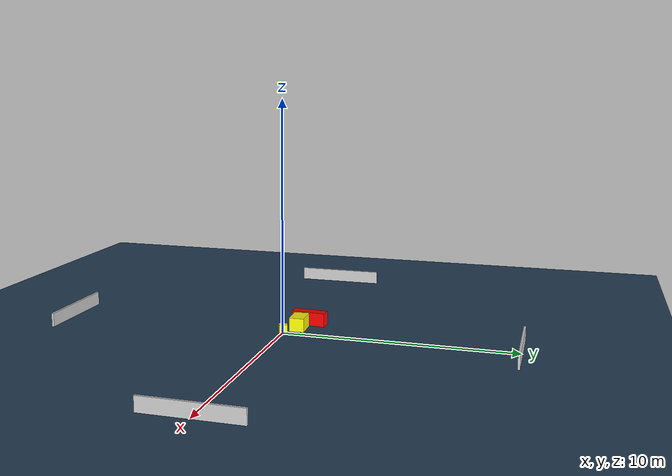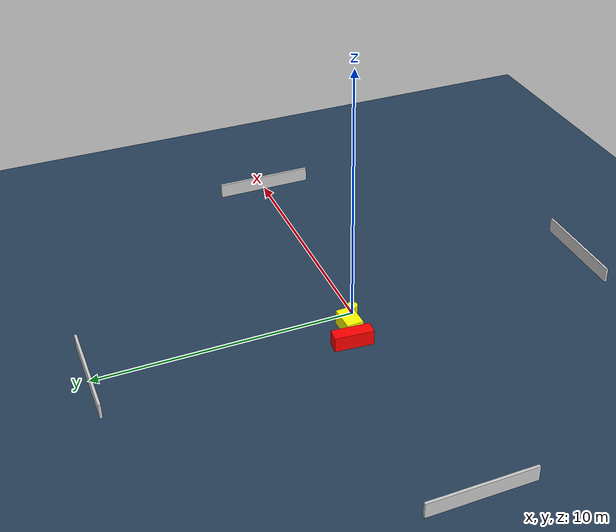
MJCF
<?xml version="1.0" ?>
<mujoco model="generated_environment">
  <option timestep="0.01" integrator="RK4" cone="elliptic"/>
  <default>
    <geom density="1"/>
  </default>
  <asset>
    <texture builtin="gradient" height="3072" name="skybox" rgb1="0.3 0.5 0.7" rgb2="0 0 0" type="skybox" width="512"/>
    <texture builtin="checker" height="300" name="groundplane" rgb1="0.2 0.3 0.4" rgb2="0.1 0.2 0.3" type="2d" width="300"/>
    <material name="groundplane" reflectance="0.2" texrepeat="5 5" texture="groundplane"/>
  </asset>
  <worldbody>
    <light dir="0 0 -1" directional="true" pos="0 0 1.5"/>
    <geom condim="3" friction="0.5 0.005 0.001" material="groundplane" name="floor" pos="0 0 0" size="0 0 0.05" type="plane"/>
    <body name="walls">
      <geom name="wall_1" condim="4" pos="-10.0 0.0 0.3" rgba="0.800000011920929 0.800000011920929 0.800000011920929 1.0" size="0.05 2.0 0.3" type="box"/>
      <geom name="wall_2" condim="4" pos="10.0 0.0 0.3" rgba="0.800000011920929 0.800000011920929 0.800000011920929 1.0" size="0.05 2.0 0.3" type="box"/>
      <geom name="wall_3" condim="4" pos="0.0 -10.0 0.3" rgba="0.800000011920929 0.800000011920929 0.800000011920929 1.0" size="2.0 0.05 0.3" type="box"/>
      <geom name="wall_4" condim="4" pos="0.0 10.0 0.3" rgba="0.800000011920929 0.800000011920929 0.800000011920929 1.0" size="2.0 0.05 0.3" type="box"/>
    </body>
    <body name="robot">
      <joint name="joint_x" type="slide" pos="0 0 0" axis="1 0 0"/>
      <joint name="joint_y" type="slide" pos="0 0 0" axis="0 1 0"/>
      <geom name="robot" type="cylinder" pos="0.0 0.0 0.2" size="0.2 0.2 0.0" mass="5.0" friction="1.0 0.005 0.0001" condim="4" rgba="1.0 1.0 0.0 1.0"/>
    </body>
    <body name="obstacle_1_movable">
      <geom name="obstacle_1_movable" condim="4" pos="-0.8243728156605974 0.47694952869846113 0.3" euler="0 0 2.228790569551391" friction="0.0 0.005 0.001" rgba="1.0 1.0 0.0 1.0" size="0.5106626037096552 0.32764783044054613 0.3" type="box" mass="0.1"/>
      <joint type="free"/>
    </body>
    <body name="obstacle_2_static">
      <geom name="obstacle_2_static" condim="4" pos="-1.664707114522987 0.7217819730373298 0.3" euler="0 0 85.26454291962025" friction="0.0 0.005 0.001" rgba="1.0 0.0 0.0 1.0" size="0.7502339614955689 0.2515124725894308 0.3" type="box"/>
    </body>
  </worldbody>
  <actuator>
    <motor name="actuator_x" joint="joint_x" gear="1" ctrlrange="-1 1"/>
    <motor name="actuator_y" joint="joint_y" gear="1" ctrlrange="-1 1"/>
  </actuator>
</mujoco>
